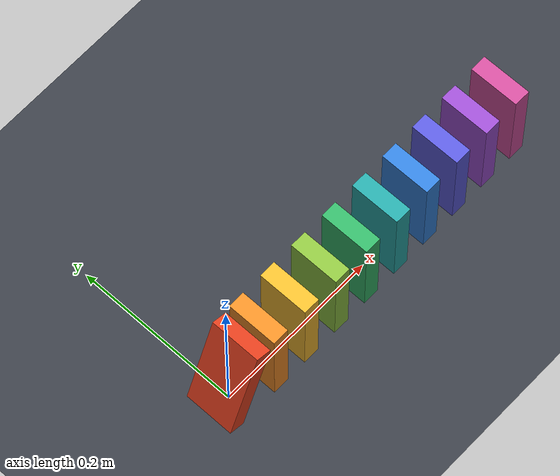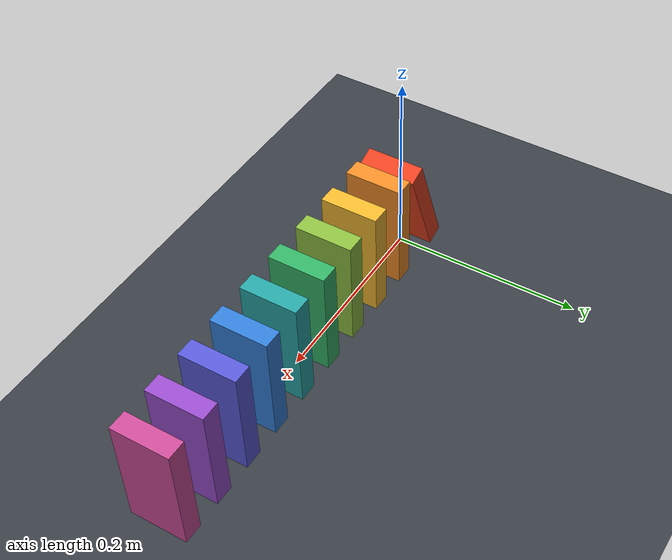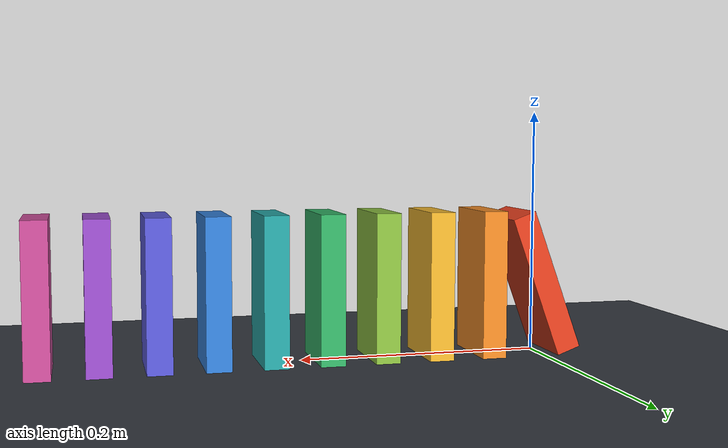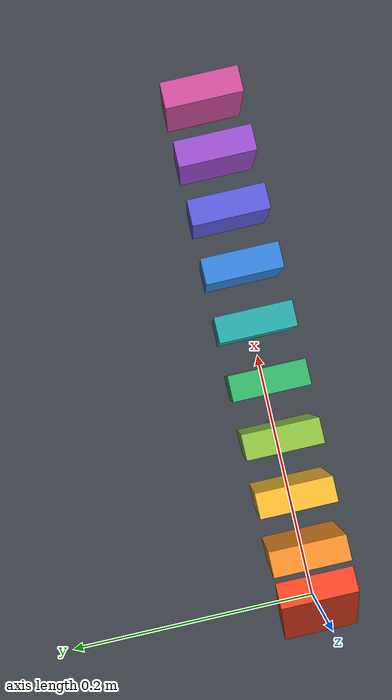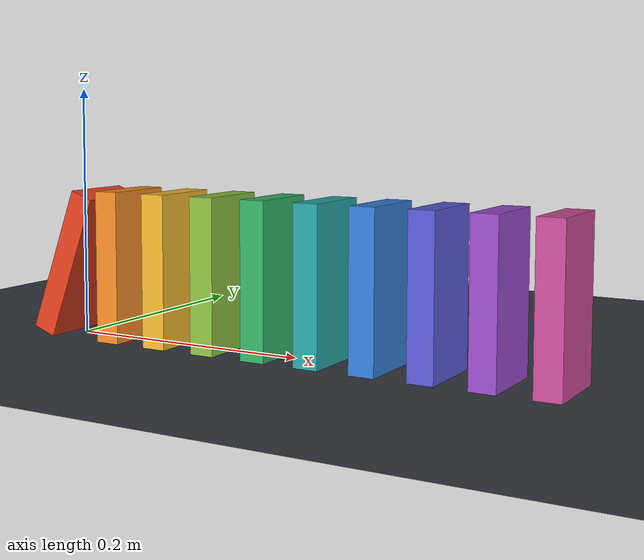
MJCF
<mujoco model="ten_domino_cascade">
  <compiler angle="degree"/>
  <option timestep="0.002" gravity="0 0 -9.81" integrator="implicitfast" iterations="100"/>
  <size nconmax="300" njmax="1000"/>

  <visual>
    <headlight ambient="0.35 0.35 0.35" diffuse="0.7 0.7 0.7" specular="0.2 0.2 0.2"/>
  </visual>

  <worldbody>
    <light name="overhead" pos="0.2 -0.3 1" dir="0 0.3 -1" directional="true"/>
    <camera name="overview" pos="0.2 -0.65 0.36" xyaxes="1 0 0 0 0.485 0.875"/>
    <geom name="floor" type="plane" pos="0 0 0" size="1 0.5 0.1" friction="0.8 0.005 0.0001" condim="3" solref="0.01 1" solimp="0.95 0.99 0.001" rgba="0.22 0.24 0.27 1"/>

    <body name="domino1" pos="0 0 0.059901758" quat="0.984807753 0 0.173648178 0">
      <freejoint name="domino1_joint"/>
      <geom name="domino1_geom" type="box" size="0.01 0.03 0.06" mass="0.08" friction="0.8 0.005 0.0001" condim="3" solref="0.01 1" solimp="0.95 0.99 0.001" rgba="0.9 0.25 0.12 1"/>
    </body>

    <body name="domino2" pos="0.045 0 0.0601">
      <freejoint name="domino2_joint"/>
      <geom name="domino2_geom" type="box" size="0.01 0.03 0.06" mass="0.08" friction="0.8 0.005 0.0001" condim="3" solref="0.01 1" solimp="0.95 0.99 0.001" rgba="0.95 0.55 0.15 1"/>
    </body>

    <body name="domino3" pos="0.090 0 0.0601">
      <freejoint name="domino3_joint"/>
      <geom name="domino3_geom" type="box" size="0.01 0.03 0.06" mass="0.08" friction="0.8 0.005 0.0001" condim="3" solref="0.01 1" solimp="0.95 0.99 0.001" rgba="0.95 0.72 0.18 1"/>
    </body>

    <body name="domino4" pos="0.135 0 0.0601">
      <freejoint name="domino4_joint"/>
      <geom name="domino4_geom" type="box" size="0.01 0.03 0.06" mass="0.08" friction="0.8 0.005 0.0001" condim="3" solref="0.01 1" solimp="0.95 0.99 0.001" rgba="0.55 0.75 0.25 1"/>
    </body>

    <body name="domino5" pos="0.180 0 0.0601">
      <freejoint name="domino5_joint"/>
      <geom name="domino5_geom" type="box" size="0.01 0.03 0.06" mass="0.08" friction="0.8 0.005 0.0001" condim="3" solref="0.01 1" solimp="0.95 0.99 0.001" rgba="0.2 0.7 0.4 1"/>
    </body>

    <body name="domino6" pos="0.225 0 0.0601">
      <freejoint name="domino6_joint"/>
      <geom name="domino6_geom" type="box" size="0.01 0.03 0.06" mass="0.08" friction="0.8 0.005 0.0001" condim="3" solref="0.01 1" solimp="0.95 0.99 0.001" rgba="0.15 0.65 0.65 1"/>
    </body>

    <body name="domino7" pos="0.270 0 0.0601">
      <freejoint name="domino7_joint"/>
      <geom name="domino7_geom" type="box" size="0.01 0.03 0.06" mass="0.08" friction="0.8 0.005 0.0001" condim="3" solref="0.01 1" solimp="0.95 0.99 0.001" rgba="0.2 0.5 0.85 1"/>
    </body>

    <body name="domino8" pos="0.315 0 0.0601">
      <freejoint name="domino8_joint"/>
      <geom name="domino8_geom" type="box" size="0.01 0.03 0.06" mass="0.08" friction="0.8 0.005 0.0001" condim="3" solref="0.01 1" solimp="0.95 0.99 0.001" rgba="0.35 0.35 0.85 1"/>
    </body>

    <body name="domino9" pos="0.360 0 0.0601">
      <freejoint name="domino9_joint"/>
      <geom name="domino9_geom" type="box" size="0.01 0.03 0.06" mass="0.08" friction="0.8 0.005 0.0001" condim="3" solref="0.01 1" solimp="0.95 0.99 0.001" rgba="0.6 0.3 0.8 1"/>
    </body>

    <body name="domino10" pos="0.405 0 0.0601">
      <freejoint name="domino10_joint"/>
      <geom name="domino10_geom" type="box" size="0.01 0.03 0.06" mass="0.08" friction="0.8 0.005 0.0001" condim="3" solref="0.01 1" solimp="0.95 0.99 0.001" rgba="0.8 0.3 0.6 1"/>
    </body>
  </worldbody>

  <keyframe>
    <key name="start"/>
  </keyframe>
</mujoco>
